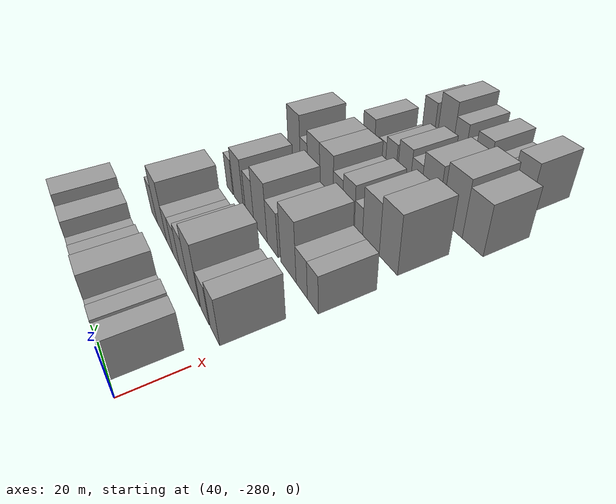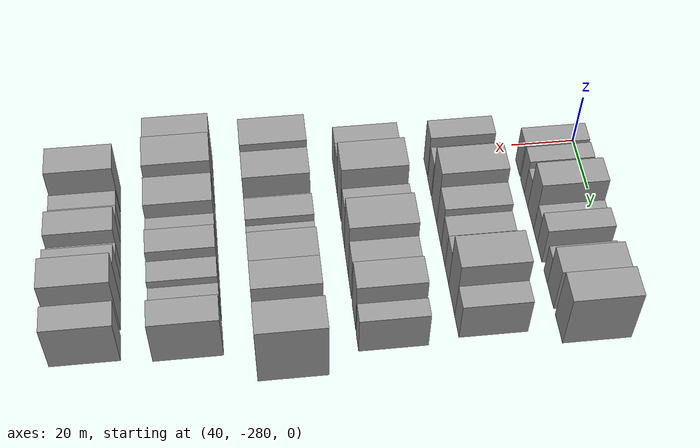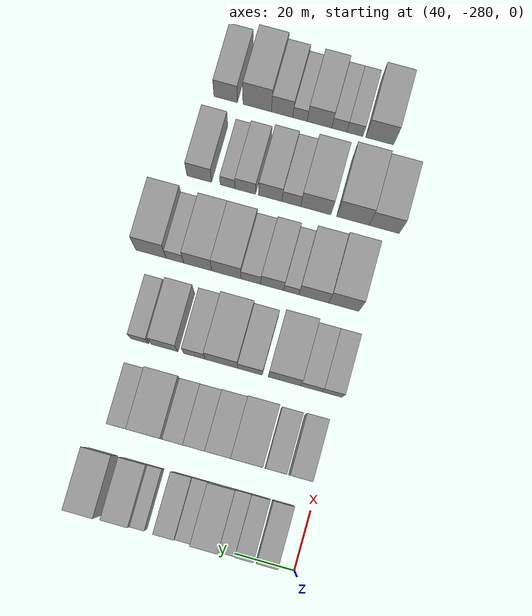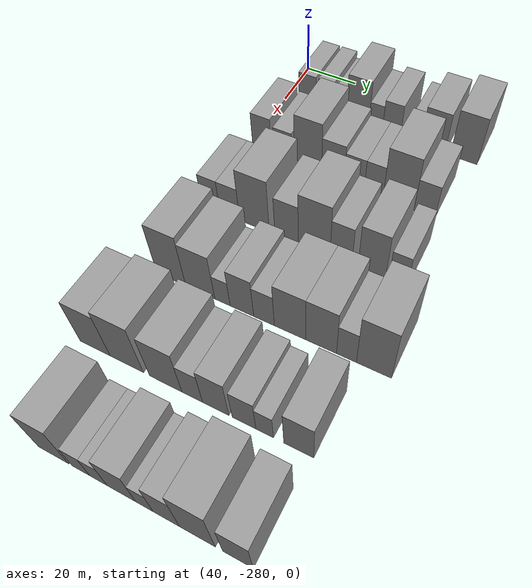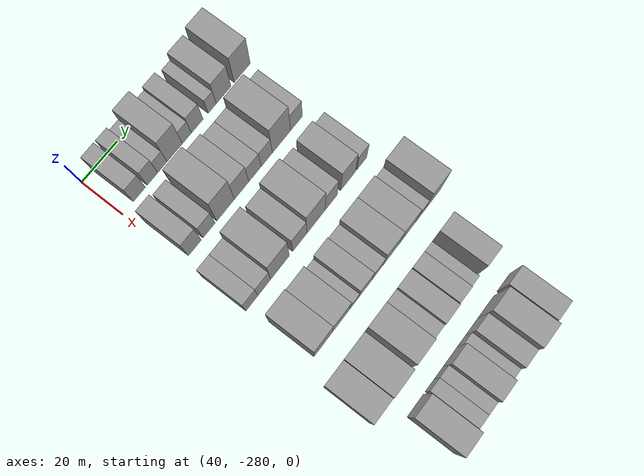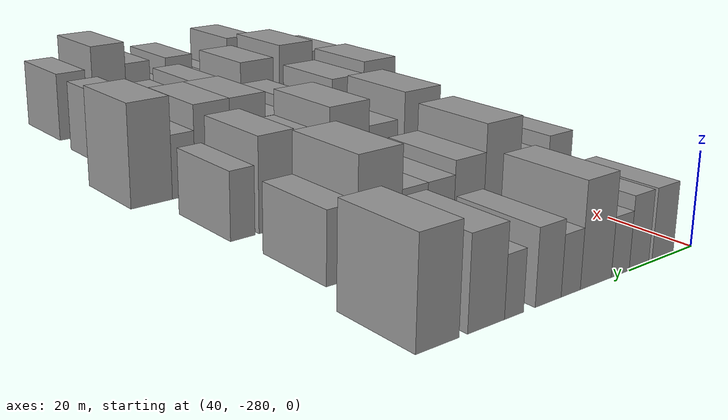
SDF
<sdf version="1.6">
 <world name="default">
  <model name="building_26">
   <static>1</static>
   <pose>50.0000 -270.5870 0 0.000000 0.000000 0.000000</pose>
   <link name="link">
    <pose>0 0 7.50 0 0 0</pose>
    <collision name="collision"><geometry><box><size>20.0000 6.8825 15.0000</size></box></geometry></collision>
    <visual name="visual">
     <cast_shadows>0</cast_shadows>
     <geometry><box><size>20.0000 6.8825 15.0000</size></box></geometry>
     <material>
      <script>
       <uri>model://grey_wall/materials/scripts</uri>
       <uri>model://grey_wall/materials/textures</uri>
       <name>vrc/grey_wall</name>
      </script>
     </material>
    </visual>
   </link>
  </model>
  <model name="building_27">
   <static>1</static>
   <pose>50.0000 -263.1176 0 0.000000 0.000000 0.000000</pose>
   <link name="link">
    <pose>0 0 7.50 0 0 0</pose>
    <collision name="collision"><geometry><box><size>20.0000 6.0564 15.0000</size></box></geometry></collision>
    <visual name="visual">
     <cast_shadows>0</cast_shadows>
     <geometry><box><size>20.0000 6.0564 15.0000</size></box></geometry>
     <material>
      <script>
       <uri>model://grey_wall/materials/scripts</uri>
       <uri>model://grey_wall/materials/textures</uri>
       <name>vrc/grey_wall</name>
      </script>
     </material>
    </visual>
   </link>
  </model>
  <model name="building_28">
   <static>1</static>
   <pose>50.0000 -257.4075 0 0.000000 0.000000 0.000000</pose>
   <link name="link">
    <pose>0 0 6.00 0 0 0</pose>
    <collision name="collision"><geometry><box><size>20.0000 5.3637 12.0000</size></box></geometry></collision>
    <visual name="visual">
     <cast_shadows>0</cast_shadows>
     <geometry><box><size>20.0000 5.3637 12.0000</size></box></geometry>
     <material>
      <script>
       <uri>model://grey_wall/materials/scripts</uri>
       <uri>model://grey_wall/materials/textures</uri>
       <name>vrc/grey_wall</name>
      </script>
     </material>
    </visual>
   </link>
  </model>
  <model name="building_29">
   <static>1</static>
   <pose>50.0000 -250.2518 0 0.000000 0.000000 0.000000</pose>
   <link name="link">
    <pose>0 0 10.50 0 0 0</pose>
    <collision name="collision"><geometry><box><size>20.0000 8.9477 21.0000</size></box></geometry></collision>
    <visual name="visual">
     <cast_shadows>0</cast_shadows>
     <geometry><box><size>20.0000 8.9477 21.0000</size></box></geometry>
     <material>
      <script>
       <uri>model://grey_wall/materials/scripts</uri>
       <uri>model://grey_wall/materials/textures</uri>
       <name>vrc/grey_wall</name>
      </script>
     </material>
    </visual>
   </link>
  </model>
  <model name="building_30">
   <static>1</static>
   <pose>50.0000 -243.1245 0 0.000000 0.000000 0.000000</pose>
   <link name="link">
    <pose>0 0 6.00 0 0 0</pose>
    <collision name="collision"><geometry><box><size>20.0000 5.3070 12.0000</size></box></geometry></collision>
    <visual name="visual">
     <cast_shadows>0</cast_shadows>
     <geometry><box><size>20.0000 5.3070 12.0000</size></box></geometry>
     <material>
      <script>
       <uri>model://grey_wall/materials/scripts</uri>
       <uri>model://grey_wall/materials/textures</uri>
       <name>vrc/grey_wall</name>
      </script>
     </material>
    </visual>
   </link>
  </model>
  <model name="building_31">
   <static>1</static>
   <pose>50.0000 -237.0091 0 0.000000 0.000000 0.000000</pose>
   <link name="link">
    <pose>0 0 7.50 0 0 0</pose>
    <collision name="collision"><geometry><box><size>20.0000 6.9237 15.0000</size></box></geometry></collision>
    <visual name="visual">
     <cast_shadows>0</cast_shadows>
     <geometry><box><size>20.0000 6.9237 15.0000</size></box></geometry>
     <material>
      <script>
       <uri>model://grey_wall/materials/scripts</uri>
       <uri>model://grey_wall/materials/textures</uri>
       <name>vrc/grey_wall</name>
      </script>
     </material>
    </visual>
   </link>
  </model>
  <model name="building_32">
   <static>1</static>
   <pose>50.0000 -228.1364 0 0.000000 0.000000 0.000000</pose>
   <link name="link">
    <pose>0 0 6.00 0 0 0</pose>
    <collision name="collision"><geometry><box><size>20.0000 4.8216 12.0000</size></box></geometry></collision>
    <visual name="visual">
     <cast_shadows>0</cast_shadows>
     <geometry><box><size>20.0000 4.8216 12.0000</size></box></geometry>
     <material>
      <script>
       <uri>model://grey_wall/materials/scripts</uri>
       <uri>model://grey_wall/materials/textures</uri>
       <name>vrc/grey_wall</name>
      </script>
     </material>
    </visual>
   </link>
  </model>
  <model name="building_33">
   <static>1</static>
   <pose>50.0000 -221.2678 0 0.000000 0.000000 0.000000</pose>
   <link name="link">
    <pose>0 0 9.00 0 0 0</pose>
    <collision name="collision"><geometry><box><size>20.0000 8.9158 18.0000</size></box></geometry></collision>
    <visual name="visual">
     <cast_shadows>0</cast_shadows>
     <geometry><box><size>20.0000 8.9158 18.0000</size></box></geometry>
     <material>
      <script>
       <uri>model://grey_wall/materials/scripts</uri>
       <uri>model://grey_wall/materials/textures</uri>
       <name>vrc/grey_wall</name>
      </script>
     </material>
    </visual>
   </link>
  </model>
  <model name="building_34">
   <static>1</static>
   <pose>50.0000 -209.9153 0 0.000000 0.000000 0.000000</pose>
   <link name="link">
    <pose>0 0 10.50 0 0 0</pose>
    <collision name="collision"><geometry><box><size>20.0000 9.7893 21.0000</size></box></geometry></collision>
    <visual name="visual">
     <cast_shadows>0</cast_shadows>
     <geometry><box><size>20.0000 9.7893 21.0000</size></box></geometry>
     <material>
      <script>
       <uri>model://grey_wall/materials/scripts</uri>
       <uri>model://grey_wall/materials/textures</uri>
       <name>vrc/grey_wall</name>
      </script>
     </material>
    </visual>
   </link>
  </model>
  <model name="building_143">
   <static>1</static>
   <pose>79.0000 -273.6751 0 0.000000 0.000000 0.000000</pose>
   <link name="link">
    <pose>0 0 9.00 0 0 0</pose>
    <collision name="collision"><geometry><box><size>20.0000 7.3194 18.0000</size></box></geometry></collision>
    <visual name="visual">
     <cast_shadows>0</cast_shadows>
     <geometry><box><size>20.0000 7.3194 18.0000</size></box></geometry>
     <material>
      <script>
       <uri>model://grey_wall/materials/scripts</uri>
       <uri>model://grey_wall/materials/textures</uri>
       <name>vrc/grey_wall</name>
      </script>
     </material>
    </visual>
   </link>
  </model>
  <model name="building_144">
   <static>1</static>
   <pose>79.0000 -265.5273 0 0.000000 0.000000 0.000000</pose>
   <link name="link">
    <pose>0 0 7.50 0 0 0</pose>
    <collision name="collision"><geometry><box><size>20.0000 6.9761 15.0000</size></box></geometry></collision>
    <visual name="visual">
     <cast_shadows>0</cast_shadows>
     <geometry><box><size>20.0000 6.9761 15.0000</size></box></geometry>
     <material>
      <script>
       <uri>model://grey_wall/materials/scripts</uri>
       <uri>model://grey_wall/materials/textures</uri>
       <name>vrc/grey_wall</name>
      </script>
     </material>
    </visual>
   </link>
  </model>
  <model name="building_145">
   <static>1</static>
   <pose>79.0000 -255.8874 0 0.000000 0.000000 0.000000</pose>
   <link name="link">
    <pose>0 0 12.00 0 0 0</pose>
    <collision name="collision"><geometry><box><size>20.0000 10.3038 24.0000</size></box></geometry></collision>
    <visual name="visual">
     <cast_shadows>0</cast_shadows>
     <geometry><box><size>20.0000 10.3038 24.0000</size></box></geometry>
     <material>
      <script>
       <uri>model://grey_wall/materials/scripts</uri>
       <uri>model://grey_wall/materials/textures</uri>
       <name>vrc/grey_wall</name>
      </script>
     </material>
    </visual>
   </link>
  </model>
  <model name="building_146">
   <static>1</static>
   <pose>79.0000 -246.4795 0 0.000000 0.000000 0.000000</pose>
   <link name="link">
    <pose>0 0 9.00 0 0 0</pose>
    <collision name="collision"><geometry><box><size>20.0000 8.5119 18.0000</size></box></geometry></collision>
    <visual name="visual">
     <cast_shadows>0</cast_shadows>
     <geometry><box><size>20.0000 8.5119 18.0000</size></box></geometry>
     <material>
      <script>
       <uri>model://grey_wall/materials/scripts</uri>
       <uri>model://grey_wall/materials/textures</uri>
       <name>vrc/grey_wall</name>
      </script>
     </material>
    </visual>
   </link>
  </model>
  <model name="building_147">
   <static>1</static>
   <pose>79.0000 -238.5773 0 0.000000 0.000000 0.000000</pose>
   <link name="link">
    <pose>0 0 7.50 0 0 0</pose>
    <collision name="collision"><geometry><box><size>20.0000 7.2926 15.0000</size></box></geometry></collision>
    <visual name="visual">
     <cast_shadows>0</cast_shadows>
     <geometry><box><size>20.0000 7.2926 15.0000</size></box></geometry>
     <material>
      <script>
       <uri>model://grey_wall/materials/scripts</uri>
       <uri>model://grey_wall/materials/textures</uri>
       <name>vrc/grey_wall</name>
      </script>
     </material>
    </visual>
   </link>
  </model>
  <model name="building_148">
   <static>1</static>
   <pose>79.0000 -231.5501 0 0.000000 0.000000 0.000000</pose>
   <link name="link">
    <pose>0 0 7.50 0 0 0</pose>
    <collision name="collision"><geometry><box><size>20.0000 6.7620 15.0000</size></box></geometry></collision>
    <visual name="visual">
     <cast_shadows>0</cast_shadows>
     <geometry><box><size>20.0000 6.7620 15.0000</size></box></geometry>
     <material>
      <script>
       <uri>model://grey_wall/materials/scripts</uri>
       <uri>model://grey_wall/materials/textures</uri>
       <name>vrc/grey_wall</name>
      </script>
     </material>
    </visual>
   </link>
  </model>
  <model name="building_149">
   <static>1</static>
   <pose>79.0000 -222.6835 0 0.000000 0.000000 0.000000</pose>
   <link name="link">
    <pose>0 0 12.00 0 0 0</pose>
    <collision name="collision"><geometry><box><size>20.0000 10.9712 24.0000</size></box></geometry></collision>
    <visual name="visual">
     <cast_shadows>0</cast_shadows>
     <geometry><box><size>20.0000 10.9712 24.0000</size></box></geometry>
     <material>
      <script>
       <uri>model://grey_wall/materials/scripts</uri>
       <uri>model://grey_wall/materials/textures</uri>
       <name>vrc/grey_wall</name>
      </script>
     </material>
    </visual>
   </link>
  </model>
  <model name="building_150">
   <static>1</static>
   <pose>79.0000 -213.5568 0 0.000000 0.000000 0.000000</pose>
   <link name="link">
    <pose>0 0 7.50 0 0 0</pose>
    <collision name="collision"><geometry><box><size>20.0000 7.2820 15.0000</size></box></geometry></collision>
    <visual name="visual">
     <cast_shadows>0</cast_shadows>
     <geometry><box><size>20.0000 7.2820 15.0000</size></box></geometry>
     <material>
      <script>
       <uri>model://grey_wall/materials/scripts</uri>
       <uri>model://grey_wall/materials/textures</uri>
       <name>vrc/grey_wall</name>
      </script>
     </material>
    </visual>
   </link>
  </model>
  <model name="building_256">
   <static>1</static>
   <pose>108.0000 -276.8746 0 0.000000 0.000000 0.000000</pose>
   <link name="link">
    <pose>0 0 7.50 0 0 0</pose>
    <collision name="collision"><geometry><box><size>20.0000 6.8655 15.0000</size></box></geometry></collision>
    <visual name="visual">
     <cast_shadows>0</cast_shadows>
     <geometry><box><size>20.0000 6.8655 15.0000</size></box></geometry>
     <material>
      <script>
       <uri>model://grey_wall/materials/scripts</uri>
       <uri>model://grey_wall/materials/textures</uri>
       <name>vrc/grey_wall</name>
      </script>
     </material>
    </visual>
   </link>
  </model>
  <model name="building_257">
   <static>1</static>
   <pose>108.0000 -269.7423 0 0.000000 0.000000 0.000000</pose>
   <link name="link">
    <pose>0 0 7.50 0 0 0</pose>
    <collision name="collision"><geometry><box><size>20.0000 7.3991 15.0000</size></box></geometry></collision>
    <visual name="visual">
     <cast_shadows>0</cast_shadows>
     <geometry><box><size>20.0000 7.3991 15.0000</size></box></geometry>
     <material>
      <script>
       <uri>model://grey_wall/materials/scripts</uri>
       <uri>model://grey_wall/materials/textures</uri>
       <name>vrc/grey_wall</name>
      </script>
     </material>
    </visual>
   </link>
  </model>
  <model name="building_258">
   <static>1</static>
   <pose>108.0000 -260.5923 0 0.000000 0.000000 0.000000</pose>
   <link name="link">
    <pose>0 0 12.00 0 0 0</pose>
    <collision name="collision"><geometry><box><size>20.0000 10.9008 24.0000</size></box></geometry></collision>
    <visual name="visual">
     <cast_shadows>0</cast_shadows>
     <geometry><box><size>20.0000 10.9008 24.0000</size></box></geometry>
     <material>
      <script>
       <uri>model://grey_wall/materials/scripts</uri>
       <uri>model://grey_wall/materials/textures</uri>
       <name>vrc/grey_wall</name>
      </script>
     </material>
    </visual>
   </link>
  </model>
  <model name="building_259">
   <static>1</static>
   <pose>108.0000 -248.9507 0 0.000000 0.000000 0.000000</pose>
   <link name="link">
    <pose>0 0 9.00 0 0 0</pose>
    <collision name="collision"><geometry><box><size>20.0000 8.3825 18.0000</size></box></geometry></collision>
    <visual name="visual">
     <cast_shadows>0</cast_shadows>
     <geometry><box><size>20.0000 8.3825 18.0000</size></box></geometry>
     <material>
      <script>
       <uri>model://grey_wall/materials/scripts</uri>
       <uri>model://grey_wall/materials/textures</uri>
       <name>vrc/grey_wall</name>
      </script>
     </material>
    </visual>
   </link>
  </model>
  <model name="building_260">
   <static>1</static>
   <pose>108.0000 -239.2527 0 0.000000 0.000000 0.000000</pose>
   <link name="link">
    <pose>0 0 12.00 0 0 0</pose>
    <collision name="collision"><geometry><box><size>20.0000 11.0135 24.0000</size></box></geometry></collision>
    <visual name="visual">
     <cast_shadows>0</cast_shadows>
     <geometry><box><size>20.0000 11.0135 24.0000</size></box></geometry>
     <material>
      <script>
       <uri>model://grey_wall/materials/scripts</uri>
       <uri>model://grey_wall/materials/textures</uri>
       <name>vrc/grey_wall</name>
      </script>
     </material>
    </visual>
   </link>
  </model>
  <model name="building_261">
   <static>1</static>
   <pose>108.0000 -230.0489 0 0.000000 0.000000 0.000000</pose>
   <link name="link">
    <pose>0 0 9.00 0 0 0</pose>
    <collision name="collision"><geometry><box><size>20.0000 7.3941 18.0000</size></box></geometry></collision>
    <visual name="visual">
     <cast_shadows>0</cast_shadows>
     <geometry><box><size>20.0000 7.3941 18.0000</size></box></geometry>
     <material>
      <script>
       <uri>model://grey_wall/materials/scripts</uri>
       <uri>model://grey_wall/materials/textures</uri>
       <name>vrc/grey_wall</name>
      </script>
     </material>
    </visual>
   </link>
  </model>
  <model name="building_262">
   <static>1</static>
   <pose>108.0000 -219.8228 0 0.000000 0.000000 0.000000</pose>
   <link name="link">
    <pose>0 0 10.50 0 0 0</pose>
    <collision name="collision"><geometry><box><size>20.0000 9.0582 21.0000</size></box></geometry></collision>
    <visual name="visual">
     <cast_shadows>0</cast_shadows>
     <geometry><box><size>20.0000 9.0582 21.0000</size></box></geometry>
     <material>
      <script>
       <uri>model://grey_wall/materials/scripts</uri>
       <uri>model://grey_wall/materials/textures</uri>
       <name>vrc/grey_wall</name>
      </script>
     </material>
    </visual>
   </link>
  </model>
  <model name="building_263">
   <static>1</static>
   <pose>108.0000 -211.2762 0 0.000000 0.000000 0.000000</pose>
   <link name="link">
    <pose>0 0 7.50 0 0 0</pose>
    <collision name="collision"><geometry><box><size>20.0000 6.0351 15.0000</size></box></geometry></collision>
    <visual name="visual">
     <cast_shadows>0</cast_shadows>
     <geometry><box><size>20.0000 6.0351 15.0000</size></box></geometry>
     <material>
      <script>
       <uri>model://grey_wall/materials/scripts</uri>
       <uri>model://grey_wall/materials/textures</uri>
       <name>vrc/grey_wall</name>
      </script>
     </material>
    </visual>
   </link>
  </model>
  <model name="building_366">
   <static>1</static>
   <pose>137.0000 -273.1325 0 0.000000 0.000000 0.000000</pose>
   <link name="link">
    <pose>0 0 12.00 0 0 0</pose>
    <collision name="collision"><geometry><box><size>20.0000 10.4372 24.0000</size></box></geometry></collision>
    <visual name="visual">
     <cast_shadows>0</cast_shadows>
     <geometry><box><size>20.0000 10.4372 24.0000</size></box></geometry>
     <material>
      <script>
       <uri>model://grey_wall/materials/scripts</uri>
       <uri>model://grey_wall/materials/textures</uri>
       <name>vrc/grey_wall</name>
      </script>
     </material>
    </visual>
   </link>
  </model>
  <model name="building_367">
   <static>1</static>
   <pose>137.0000 -262.8202 0 0.000000 0.000000 0.000000</pose>
   <link name="link">
    <pose>0 0 10.50 0 0 0</pose>
    <collision name="collision"><geometry><box><size>20.0000 10.1873 21.0000</size></box></geometry></collision>
    <visual name="visual">
     <cast_shadows>0</cast_shadows>
     <geometry><box><size>20.0000 10.1873 21.0000</size></box></geometry>
     <material>
      <script>
       <uri>model://grey_wall/materials/scripts</uri>
       <uri>model://grey_wall/materials/textures</uri>
       <name>vrc/grey_wall</name>
      </script>
     </material>
    </visual>
   </link>
  </model>
  <model name="building_368">
   <static>1</static>
   <pose>137.0000 -255.1087 0 0.000000 0.000000 0.000000</pose>
   <link name="link">
    <pose>0 0 6.00 0 0 0</pose>
    <collision name="collision"><geometry><box><size>20.0000 5.2357 12.0000</size></box></geometry></collision>
    <visual name="visual">
     <cast_shadows>0</cast_shadows>
     <geometry><box><size>20.0000 5.2357 12.0000</size></box></geometry>
     <material>
      <script>
       <uri>model://grey_wall/materials/scripts</uri>
       <uri>model://grey_wall/materials/textures</uri>
       <name>vrc/grey_wall</name>
      </script>
     </material>
    </visual>
   </link>
  </model>
  <model name="building_369">
   <static>1</static>
   <pose>137.0000 -248.5277 0 0.000000 0.000000 0.000000</pose>
   <link name="link">
    <pose>0 0 9.00 0 0 0</pose>
    <collision name="collision"><geometry><box><size>20.0000 7.9263 18.0000</size></box></geometry></collision>
    <visual name="visual">
     <cast_shadows>0</cast_shadows>
     <geometry><box><size>20.0000 7.9263 18.0000</size></box></geometry>
     <material>
      <script>
       <uri>model://grey_wall/materials/scripts</uri>
       <uri>model://grey_wall/materials/textures</uri>
       <name>vrc/grey_wall</name>
      </script>
     </material>
    </visual>
   </link>
  </model>
  <model name="building_370">
   <static>1</static>
   <pose>137.0000 -241.1570 0 0.000000 0.000000 0.000000</pose>
   <link name="link">
    <pose>0 0 7.50 0 0 0</pose>
    <collision name="collision"><geometry><box><size>20.0000 6.8150 15.0000</size></box></geometry></collision>
    <visual name="visual">
     <cast_shadows>0</cast_shadows>
     <geometry><box><size>20.0000 6.8150 15.0000</size></box></geometry>
     <material>
      <script>
       <uri>model://grey_wall/materials/scripts</uri>
       <uri>model://grey_wall/materials/textures</uri>
       <name>vrc/grey_wall</name>
      </script>
     </material>
    </visual>
   </link>
  </model>
  <model name="building_371">
   <static>1</static>
   <pose>137.0000 -232.7211 0 0.000000 0.000000 0.000000</pose>
   <link name="link">
    <pose>0 0 10.50 0 0 0</pose>
    <collision name="collision"><geometry><box><size>20.0000 10.0568 21.0000</size></box></geometry></collision>
    <visual name="visual">
     <cast_shadows>0</cast_shadows>
     <geometry><box><size>20.0000 10.0568 21.0000</size></box></geometry>
     <material>
      <script>
       <uri>model://grey_wall/materials/scripts</uri>
       <uri>model://grey_wall/materials/textures</uri>
       <name>vrc/grey_wall</name>
      </script>
     </material>
    </visual>
   </link>
  </model>
  <model name="building_372">
   <static>1</static>
   <pose>137.0000 -222.8588 0 0.000000 0.000000 0.000000</pose>
   <link name="link">
    <pose>0 0 10.50 0 0 0</pose>
    <collision name="collision"><geometry><box><size>20.0000 9.6679 21.0000</size></box></geometry></collision>
    <visual name="visual">
     <cast_shadows>0</cast_shadows>
     <geometry><box><size>20.0000 9.6679 21.0000</size></box></geometry>
     <material>
      <script>
       <uri>model://grey_wall/materials/scripts</uri>
       <uri>model://grey_wall/materials/textures</uri>
       <name>vrc/grey_wall</name>
      </script>
     </material>
    </visual>
   </link>
  </model>
  <model name="building_373">
   <static>1</static>
   <pose>137.0000 -214.9940 0 0.000000 0.000000 0.000000</pose>
   <link name="link">
    <pose>0 0 7.50 0 0 0</pose>
    <collision name="collision"><geometry><box><size>20.0000 6.0616 15.0000</size></box></geometry></collision>
    <visual name="visual">
     <cast_shadows>0</cast_shadows>
     <geometry><box><size>20.0000 6.0616 15.0000</size></box></geometry>
     <material>
      <script>
       <uri>model://grey_wall/materials/scripts</uri>
       <uri>model://grey_wall/materials/textures</uri>
       <name>vrc/grey_wall</name>
      </script>
     </material>
    </visual>
   </link>
  </model>
  <model name="building_374">
   <static>1</static>
   <pose>137.0000 -206.7144 0 0.000000 0.000000 0.000000</pose>
   <link name="link">
    <pose>0 0 12.00 0 0 0</pose>
    <collision name="collision"><geometry><box><size>20.0000 10.4976 24.0000</size></box></geometry></collision>
    <visual name="visual">
     <cast_shadows>0</cast_shadows>
     <geometry><box><size>20.0000 10.4976 24.0000</size></box></geometry>
     <material>
      <script>
       <uri>model://grey_wall/materials/scripts</uri>
       <uri>model://grey_wall/materials/textures</uri>
       <name>vrc/grey_wall</name>
      </script>
     </material>
    </visual>
   </link>
  </model>
  <model name="building_476">
   <static>1</static>
   <pose>166.0000 -279.3903 0 0.000000 0.000000 0.000000</pose>
   <link name="link">
    <pose>0 0 10.50 0 0 0</pose>
    <collision name="collision"><geometry><box><size>20.0000 10.4335 21.0000</size></box></geometry></collision>
    <visual name="visual">
     <cast_shadows>0</cast_shadows>
     <geometry><box><size>20.0000 10.4335 21.0000</size></box></geometry>
     <material>
      <script>
       <uri>model://grey_wall/materials/scripts</uri>
       <uri>model://grey_wall/materials/textures</uri>
       <name>vrc/grey_wall</name>
      </script>
     </material>
    </visual>
   </link>
  </model>
  <model name="building_477">
   <static>1</static>
   <pose>166.0000 -268.5571 0 0.000000 0.000000 0.000000</pose>
   <link name="link">
    <pose>0 0 12.00 0 0 0</pose>
    <collision name="collision"><geometry><box><size>20.0000 11.2327 24.0000</size></box></geometry></collision>
    <visual name="visual">
     <cast_shadows>0</cast_shadows>
     <geometry><box><size>20.0000 11.2327 24.0000</size></box></geometry>
     <material>
      <script>
       <uri>model://grey_wall/materials/scripts</uri>
       <uri>model://grey_wall/materials/textures</uri>
       <name>vrc/grey_wall</name>
      </script>
     </material>
    </visual>
   </link>
  </model>
  <model name="building_478">
   <static>1</static>
   <pose>166.0000 -255.6925 0 0.000000 0.000000 0.000000</pose>
   <link name="link">
    <pose>0 0 10.50 0 0 0</pose>
    <collision name="collision"><geometry><box><size>20.0000 10.4965 21.0000</size></box></geometry></collision>
    <visual name="visual">
     <cast_shadows>0</cast_shadows>
     <geometry><box><size>20.0000 10.4965 21.0000</size></box></geometry>
     <material>
      <script>
       <uri>model://grey_wall/materials/scripts</uri>
       <uri>model://grey_wall/materials/textures</uri>
       <name>vrc/grey_wall</name>
      </script>
     </material>
    </visual>
   </link>
  </model>
  <model name="building_479">
   <static>1</static>
   <pose>166.0000 -247.1740 0 0.000000 0.000000 0.000000</pose>
   <link name="link">
    <pose>0 0 7.50 0 0 0</pose>
    <collision name="collision"><geometry><box><size>20.0000 6.5405 15.0000</size></box></geometry></collision>
    <visual name="visual">
     <cast_shadows>0</cast_shadows>
     <geometry><box><size>20.0000 6.5405 15.0000</size></box></geometry>
     <material>
      <script>
       <uri>model://grey_wall/materials/scripts</uri>
       <uri>model://grey_wall/materials/textures</uri>
       <name>vrc/grey_wall</name>
      </script>
     </material>
    </visual>
   </link>
  </model>
  <model name="building_480">
   <static>1</static>
   <pose>166.0000 -239.8265 0 0.000000 0.000000 0.000000</pose>
   <link name="link">
    <pose>0 0 9.00 0 0 0</pose>
    <collision name="collision"><geometry><box><size>20.0000 8.1545 18.0000</size></box></geometry></collision>
    <visual name="visual">
     <cast_shadows>0</cast_shadows>
     <geometry><box><size>20.0000 8.1545 18.0000</size></box></geometry>
     <material>
      <script>
       <uri>model://grey_wall/materials/scripts</uri>
       <uri>model://grey_wall/materials/textures</uri>
       <name>vrc/grey_wall</name>
      </script>
     </material>
    </visual>
   </link>
  </model>
  <model name="building_481">
   <static>1</static>
   <pose>166.0000 -231.1820 0 0.000000 0.000000 0.000000</pose>
   <link name="link">
    <pose>0 0 7.50 0 0 0</pose>
    <collision name="collision"><geometry><box><size>20.0000 7.1346 15.0000</size></box></geometry></collision>
    <visual name="visual">
     <cast_shadows>0</cast_shadows>
     <geometry><box><size>20.0000 7.1346 15.0000</size></box></geometry>
     <material>
      <script>
       <uri>model://grey_wall/materials/scripts</uri>
       <uri>model://grey_wall/materials/textures</uri>
       <name>vrc/grey_wall</name>
      </script>
     </material>
    </visual>
   </link>
  </model>
  <model name="building_482">
   <static>1</static>
   <pose>166.0000 -225.0197 0 0.000000 0.000000 0.000000</pose>
   <link name="link">
    <pose>0 0 6.00 0 0 0</pose>
    <collision name="collision"><geometry><box><size>20.0000 5.1900 12.0000</size></box></geometry></collision>
    <visual name="visual">
     <cast_shadows>0</cast_shadows>
     <geometry><box><size>20.0000 5.1900 12.0000</size></box></geometry>
     <material>
      <script>
       <uri>model://grey_wall/materials/scripts</uri>
       <uri>model://grey_wall/materials/textures</uri>
       <name>vrc/grey_wall</name>
      </script>
     </material>
    </visual>
   </link>
  </model>
  <model name="building_483">
   <static>1</static>
   <pose>166.0000 -215.1399 0 0.000000 0.000000 0.000000</pose>
   <link name="link">
    <pose>0 0 9.00 0 0 0</pose>
    <collision name="collision"><geometry><box><size>20.0000 8.5696 18.0000</size></box></geometry></collision>
    <visual name="visual">
     <cast_shadows>0</cast_shadows>
     <geometry><box><size>20.0000 8.5696 18.0000</size></box></geometry>
     <material>
      <script>
       <uri>model://grey_wall/materials/scripts</uri>
       <uri>model://grey_wall/materials/textures</uri>
       <name>vrc/grey_wall</name>
      </script>
     </material>
    </visual>
   </link>
  </model>
  <model name="building_590">
   <static>1</static>
   <pose>195.0000 -270.2416 0 0.000000 0.000000 0.000000</pose>
   <link name="link">
    <pose>0 0 10.50 0 0 0</pose>
    <collision name="collision"><geometry><box><size>20.0000 9.7390 21.0000</size></box></geometry></collision>
    <visual name="visual">
     <cast_shadows>0</cast_shadows>
     <geometry><box><size>20.0000 9.7390 21.0000</size></box></geometry>
     <material>
      <script>
       <uri>model://grey_wall/materials/scripts</uri>
       <uri>model://grey_wall/materials/textures</uri>
       <name>vrc/grey_wall</name>
      </script>
     </material>
    </visual>
   </link>
  </model>
  <model name="building_591">
   <static>1</static>
   <pose>195.0000 -261.5553 0 0.000000 0.000000 0.000000</pose>
   <link name="link">
    <pose>0 0 6.00 0 0 0</pose>
    <collision name="collision"><geometry><box><size>20.0000 5.6334 12.0000</size></box></geometry></collision>
    <visual name="visual">
     <cast_shadows>0</cast_shadows>
     <geometry><box><size>20.0000 5.6334 12.0000</size></box></geometry>
     <material>
      <script>
       <uri>model://grey_wall/materials/scripts</uri>
       <uri>model://grey_wall/materials/textures</uri>
       <name>vrc/grey_wall</name>
      </script>
     </material>
    </visual>
   </link>
  </model>
  <model name="building_592">
   <static>1</static>
   <pose>195.0000 -256.0969 0 0.000000 0.000000 0.000000</pose>
   <link name="link">
    <pose>0 0 6.00 0 0 0</pose>
    <collision name="collision"><geometry><box><size>20.0000 5.2834 12.0000</size></box></geometry></collision>
    <visual name="visual">
     <cast_shadows>0</cast_shadows>
     <geometry><box><size>20.0000 5.2834 12.0000</size></box></geometry>
     <material>
      <script>
       <uri>model://grey_wall/materials/scripts</uri>
       <uri>model://grey_wall/materials/textures</uri>
       <name>vrc/grey_wall</name>
      </script>
     </material>
    </visual>
   </link>
  </model>
  <model name="building_593">
   <static>1</static>
   <pose>195.0000 -249.1523 0 0.000000 0.000000 0.000000</pose>
   <link name="link">
    <pose>0 0 9.00 0 0 0</pose>
    <collision name="collision"><geometry><box><size>20.0000 8.6059 18.0000</size></box></geometry></collision>
    <visual name="visual">
     <cast_shadows>0</cast_shadows>
     <geometry><box><size>20.0000 8.6059 18.0000</size></box></geometry>
     <material>
      <script>
       <uri>model://grey_wall/materials/scripts</uri>
       <uri>model://grey_wall/materials/textures</uri>
       <name>vrc/grey_wall</name>
      </script>
     </material>
    </visual>
   </link>
  </model>
  <model name="building_594">
   <static>1</static>
   <pose>195.0000 -242.3248 0 0.000000 0.000000 0.000000</pose>
   <link name="link">
    <pose>0 0 6.00 0 0 0</pose>
    <collision name="collision"><geometry><box><size>20.0000 5.0491 12.0000</size></box></geometry></collision>
    <visual name="visual">
     <cast_shadows>0</cast_shadows>
     <geometry><box><size>20.0000 5.0491 12.0000</size></box></geometry>
     <material>
      <script>
       <uri>model://grey_wall/materials/scripts</uri>
       <uri>model://grey_wall/materials/textures</uri>
       <name>vrc/grey_wall</name>
      </script>
     </material>
    </visual>
   </link>
  </model>
  <model name="building_595">
   <static>1</static>
   <pose>195.0000 -236.0334 0 0.000000 0.000000 0.000000</pose>
   <link name="link">
    <pose>0 0 9.00 0 0 0</pose>
    <collision name="collision"><geometry><box><size>20.0000 7.5339 18.0000</size></box></geometry></collision>
    <visual name="visual">
     <cast_shadows>0</cast_shadows>
     <geometry><box><size>20.0000 7.5339 18.0000</size></box></geometry>
     <material>
      <script>
       <uri>model://grey_wall/materials/scripts</uri>
       <uri>model://grey_wall/materials/textures</uri>
       <name>vrc/grey_wall</name>
      </script>
     </material>
    </visual>
   </link>
  </model>
  <model name="building_596">
   <static>1</static>
   <pose>195.0000 -227.2732 0 0.000000 0.000000 0.000000</pose>
   <link name="link">
    <pose>0 0 12.00 0 0 0</pose>
    <collision name="collision"><geometry><box><size>20.0000 9.9864 24.0000</size></box></geometry></collision>
    <visual name="visual">
     <cast_shadows>0</cast_shadows>
     <geometry><box><size>20.0000 9.9864 24.0000</size></box></geometry>
     <material>
      <script>
       <uri>model://grey_wall/materials/scripts</uri>
       <uri>model://grey_wall/materials/textures</uri>
       <name>vrc/grey_wall</name>
      </script>
     </material>
    </visual>
   </link>
  </model>
  <model name="building_597">
   <static>1</static>
   <pose>195.0000 -216.1795 0 0.000000 0.000000 0.000000</pose>
   <link name="link">
    <pose>0 0 9.00 0 0 0</pose>
    <collision name="collision"><geometry><box><size>20.0000 8.2011 18.0000</size></box></geometry></collision>
    <visual name="visual">
     <cast_shadows>0</cast_shadows>
     <geometry><box><size>20.0000 8.2011 18.0000</size></box></geometry>
     <material>
      <script>
       <uri>model://grey_wall/materials/scripts</uri>
       <uri>model://grey_wall/materials/textures</uri>
       <name>vrc/grey_wall</name>
      </script>
     </material>
    </visual>
   </link>
  </model>
 </world>
</sdf>
